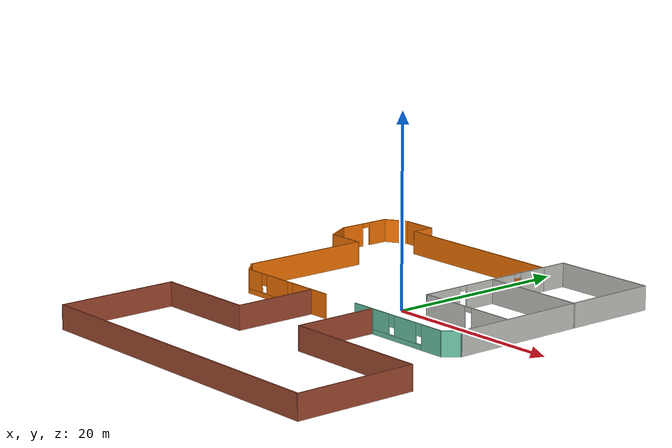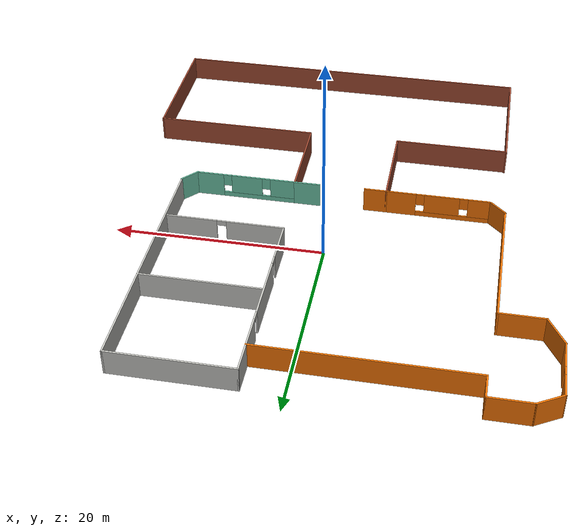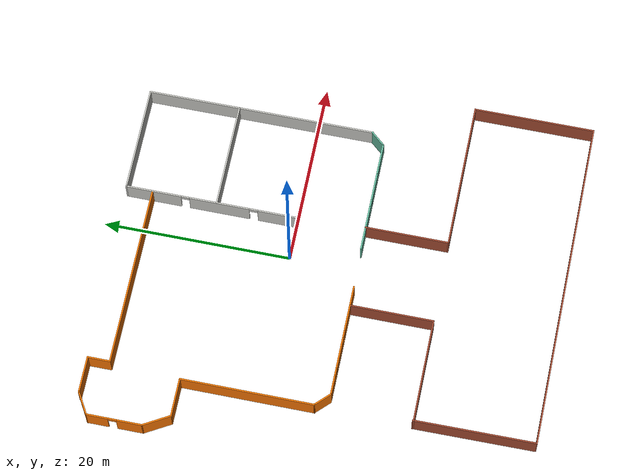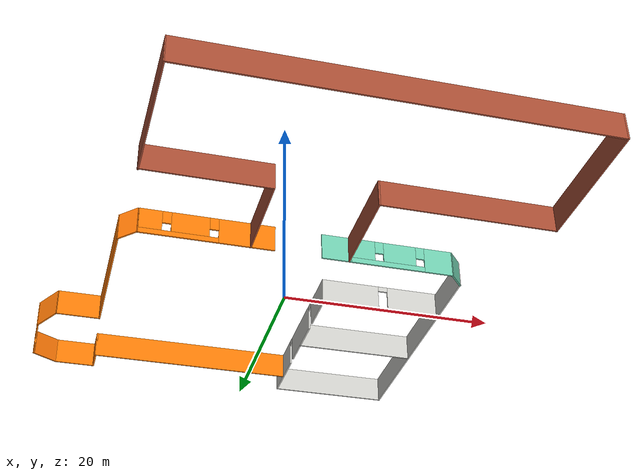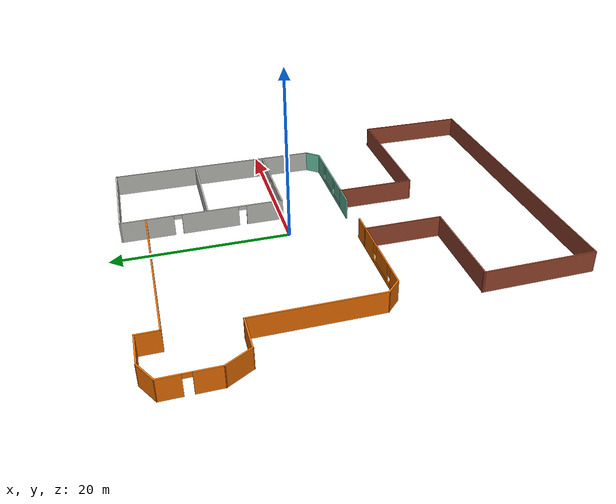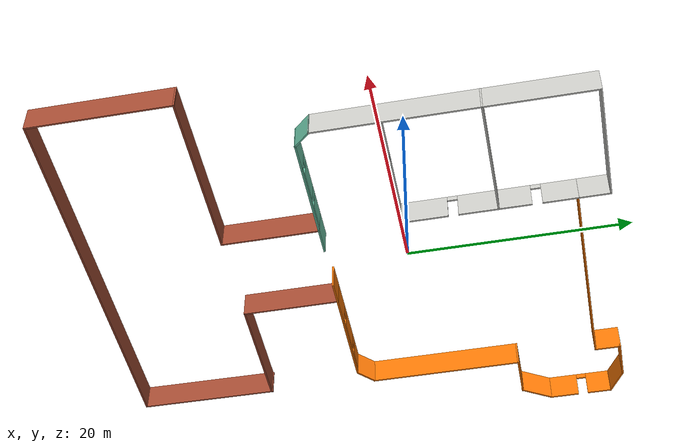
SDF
<?xml version='1.0'?>
<sdf version='1.6'>
  <model name='SnorlaxWorld'>
    <pose frame=''>-1.00548 -5.3095 0 0 -0 0</pose>
    <link name='Wall_10'>
      <collision name='Wall_10_Collision'>
        <geometry>
          <box>
            <size>2.5 0.15 2.5</size>
          </box>
        </geometry>
        <pose frame=''>0 0 1.25 0 -0 0</pose>
      </collision>
      <visual name='Wall_10_Visual'>
        <pose frame=''>0 0 1.25 0 -0 0</pose>
        <geometry>
          <box>
            <size>2.5 0.15 2.5</size>
          </box>
        </geometry>
        <material>
          <script>
            <uri>file://media/materials/scripts/gazebo.material</uri>
            <name>Gazebo/Grey</name>
          </script>
          <ambient>0.996078 0.47451 0.0196078 1</ambient>
        </material>
        <meta>
          <layer>0</layer>
        </meta>
      </visual>
      <pose frame=''>-14.8431 22.0651 0 0 -0 -1.5708</pose>
    </link>
    <link name='Wall_11'>
      <collision name='Wall_11_Collision'>
        <geometry>
          <box>
            <size>19.75 0.15 2.5</size>
          </box>
        </geometry>
        <pose frame=''>0 0 1.25 0 -0 0</pose>
      </collision>
      <visual name='Wall_11_Visual'>
        <pose frame=''>0 0 1.25 0 -0 0</pose>
        <geometry>
          <box>
            <size>19.75 0.15 2.5</size>
          </box>
        </geometry>
        <material>
          <script>
            <uri>file://media/materials/scripts/gazebo.material</uri>
            <name>Gazebo/Grey</name>
          </script>
          <ambient>0.996078 0.47451 0.0196078 1</ambient>
        </material>
        <meta>
          <layer>0</layer>
        </meta>
      </visual>
      <pose frame=''>-5.04308 20.8901 0 0 -0 0</pose>
    </link>
    <link name='Wall_12'>
      <collision name='Wall_12_Collision'>
        <geometry>
          <box>
            <size>3 0.15 2.5</size>
          </box>
        </geometry>
        <pose frame=''>0 0 1.25 0 -0 0</pose>
      </collision>
      <visual name='Wall_12_Visual'>
        <pose frame=''>0 0 1.25 0 -0 0</pose>
        <geometry>
          <box>
            <size>3 0.15 2.5</size>
          </box>
        </geometry>
        <material>
          <script>
            <uri>file://media/materials/scripts/gazebo.material</uri>
            <name>Gazebo/CeilingTiled</name>
          </script>
          <ambient>0.435294 0.796078 0.67451 1</ambient>
        </material>
        <meta>
          <layer>0</layer>
        </meta>
      </visual>
      <pose frame=''>4.75692 22.3151 0 0 -0 1.5708</pose>
    </link>
    <link name='Wall_13'>
      <collision name='Wall_13_Collision'>
        <geometry>
          <box>
            <size>11.5 0.15 2.5</size>
          </box>
        </geometry>
        <pose frame=''>0 0 1.25 0 -0 0</pose>
      </collision>
      <visual name='Wall_13_Visual'>
        <pose frame=''>0 0 1.25 0 -0 0</pose>
        <geometry>
          <box>
            <size>11.5 0.15 2.5</size>
          </box>
        </geometry>
        <material>
          <script>
            <uri>file://media/materials/scripts/gazebo.material</uri>
            <name>Gazebo/CeilingTiled</name>
          </script>
          <ambient>0.435294 0.796078 0.67451 1</ambient>
        </material>
        <meta>
          <layer>0</layer>
        </meta>
      </visual>
      <pose frame=''>10.4319 23.7401 0 0 -0 0</pose>
    </link>
    <link name='Wall_14'>
      <collision name='Wall_14_Collision'>
        <geometry>
          <box>
            <size>24.5 0.15 2.5</size>
          </box>
        </geometry>
        <pose frame=''>0 0 1.25 0 -0 0</pose>
      </collision>
      <visual name='Wall_14_Visual'>
        <pose frame=''>0 0 1.25 0 -0 0</pose>
        <geometry>
          <box>
            <size>24.5 0.15 2.5</size>
          </box>
        </geometry>
        <material>
          <script>
            <uri>file://media/materials/scripts/gazebo.material</uri>
            <name>Gazebo/CeilingTiled</name>
          </script>
          <ambient>0.435294 0.796078 0.67451 1</ambient>
        </material>
        <meta>
          <layer>0</layer>
        </meta>
      </visual>
      <pose frame=''>16.1069 11.5651 0 0 -0 -1.5708</pose>
    </link>
    <link name='Wall_16'>
      <collision name='Wall_16_Collision'>
        <geometry>
          <box>
            <size>2.01805 0.15 2.5</size>
          </box>
        </geometry>
        <pose frame=''>0 0 1.25 0 -0 0</pose>
      </collision>
      <visual name='Wall_16_Visual'>
        <pose frame=''>0 0 1.25 0 -0 0</pose>
        <geometry>
          <box>
            <size>2.01805 0.15 2.5</size>
          </box>
        </geometry>
        <material>
          <script>
            <uri>file://media/materials/scripts/gazebo.material</uri>
            <name>Gazebo/Grey</name>
          </script>
          <ambient>0.435294 0.796078 0.67451 1</ambient>
        </material>
        <meta>
          <layer>0</layer>
        </meta>
      </visual>
      <pose frame=''>15.4903 -1.31151 0 0 -0 0.849815</pose>
    </link>
    <link name='Wall_18'>
      <pose frame=''>4.75692 13.0901 0 0 -0 -1.5708</pose>
      <visual name='Wall_18_Visual_0'>
        <pose frame=''>-6.2935 0 1.25 0 -0 0</pose>
        <geometry>
          <box>
            <size>3.163 0.15 2.5</size>
          </box>
        </geometry>
        <material>
          <script>
            <uri>file://media/materials/scripts/gazebo.material</uri>
            <name>Gazebo/CeilingTiled</name>
          </script>
          <ambient>0.435294 0.796078 0.67451 1</ambient>
        </material>
        <meta>
          <layer>0</layer>
        </meta>
      </visual>
      <collision name='Wall_18_Collision_0'>
        <geometry>
          <box>
            <size>3.163 0.15 2.5</size>
          </box>
        </geometry>
        <pose frame=''>-6.2935 0 1.25 0 -0 0</pose>
      </collision>
      <visual name='Wall_18_Visual_1'>
        <pose frame=''>-0.569012 0 1.25 0 -0 0</pose>
        <geometry>
          <box>
            <size>6.48598 0.15 2.5</size>
          </box>
        </geometry>
        <material>
          <script>
            <uri>file://media/materials/scripts/gazebo.material</uri>
            <name>Gazebo/CeilingTiled</name>
          </script>
          <ambient>0.435294 0.796078 0.67451 1</ambient>
        </material>
        <meta>
          <layer>0</layer>
        </meta>
      </visual>
      <collision name='Wall_18_Collision_1'>
        <geometry>
          <box>
            <size>6.48598 0.15 2.5</size>
          </box>
        </geometry>
        <pose frame=''>-0.569012 0 1.25 0 -0 0</pose>
      </collision>
      <visual name='Wall_18_Visual_2'>
        <pose frame=''>5.72449 0 1.25 0 -0 0</pose>
        <geometry>
          <box>
            <size>4.30102 0.15 2.5</size>
          </box>
        </geometry>
        <material>
          <script>
            <uri>file://media/materials/scripts/gazebo.material</uri>
            <name>Gazebo/CeilingTiled</name>
          </script>
          <ambient>0.435294 0.796078 0.67451 1</ambient>
        </material>
        <meta>
          <layer>0</layer>
        </meta>
      </visual>
      <collision name='Wall_18_Collision_2'>
        <geometry>
          <box>
            <size>4.30102 0.15 2.5</size>
          </box>
        </geometry>
        <pose frame=''>5.72449 0 1.25 0 -0 0</pose>
      </collision>
      <visual name='Wall_18_Visual_3'>
        <pose frame=''>-4.262 0 2.25 0 -0 0</pose>
        <geometry>
          <box>
            <size>0.9 0.15 0.5</size>
          </box>
        </geometry>
        <material>
          <script>
            <uri>file://media/materials/scripts/gazebo.material</uri>
            <name>Gazebo/CeilingTiled</name>
          </script>
          <ambient>0.435294 0.796078 0.67451 1</ambient>
        </material>
        <meta>
          <layer>0</layer>
        </meta>
      </visual>
      <collision name='Wall_18_Collision_3'>
        <geometry>
          <box>
            <size>0.9 0.15 0.5</size>
          </box>
        </geometry>
        <pose frame=''>-4.262 0 2.25 0 -0 0</pose>
      </collision>
      <visual name='Wall_18_Visual_4'>
        <pose frame=''>3.12398 0 2.25 0 -0 0</pose>
        <geometry>
          <box>
            <size>0.9 0.15 0.5</size>
          </box>
        </geometry>
        <material>
          <script>
            <uri>file://media/materials/scripts/gazebo.material</uri>
            <name>Gazebo/CeilingTiled</name>
          </script>
          <ambient>0.435294 0.796078 0.67451 1</ambient>
        </material>
        <meta>
          <layer>0</layer>
        </meta>
      </visual>
      <collision name='Wall_18_Collision_4'>
        <geometry>
          <box>
            <size>0.9 0.15 0.5</size>
          </box>
        </geometry>
        <pose frame=''>3.12398 0 2.25 0 -0 0</pose>
      </collision>
    </link>
    <link name='Wall_19'>
      <pose frame=''>10.3069 5.29009 0 0 -0 0</pose>
      <visual name='Wall_19_Visual_0'>
        <pose frame=''>-2.86313 0 1.25 0 -0 0</pose>
        <geometry>
          <box>
            <size>5.52374 0.15 2.5</size>
          </box>
        </geometry>
        <material>
          <script>
            <uri>file://media/materials/scripts/gazebo.material</uri>
            <name>Gazebo/CeilingTiled</name>
          </script>
          <ambient>0.435294 0.796078 0.67451 1</ambient>
        </material>
        <meta>
          <layer>0</layer>
        </meta>
      </visual>
      <collision name='Wall_19_Collision_0'>
        <geometry>
          <box>
            <size>5.52374 0.15 2.5</size>
          </box>
        </geometry>
        <pose frame=''>-2.86313 0 1.25 0 -0 0</pose>
      </collision>
      <visual name='Wall_19_Visual_1'>
        <pose frame=''>3.21187 0 1.25 0 -0 0</pose>
        <geometry>
          <box>
            <size>4.82626 0.15 2.5</size>
          </box>
        </geometry>
        <material>
          <script>
            <uri>file://media/materials/scripts/gazebo.material</uri>
            <name>Gazebo/CeilingTiled</name>
          </script>
          <ambient>0.435294 0.796078 0.67451 1</ambient>
        </material>
        <meta>
          <layer>0</layer>
        </meta>
      </visual>
      <collision name='Wall_19_Collision_1'>
        <geometry>
          <box>
            <size>4.82626 0.15 2.5</size>
          </box>
        </geometry>
        <pose frame=''>3.21187 0 1.25 0 -0 0</pose>
      </collision>
      <visual name='Wall_19_Visual_2'>
        <pose frame=''>0.348738 0 2.25 0 -0 0</pose>
        <geometry>
          <box>
            <size>0.9 0.15 0.5</size>
          </box>
        </geometry>
        <material>
          <script>
            <uri>file://media/materials/scripts/gazebo.material</uri>
            <name>Gazebo/CeilingTiled</name>
          </script>
          <ambient>0.435294 0.796078 0.67451 1</ambient>
        </material>
        <meta>
          <layer>0</layer>
        </meta>
      </visual>
      <collision name='Wall_19_Collision_2'>
        <geometry>
          <box>
            <size>0.9 0.15 0.5</size>
          </box>
        </geometry>
        <pose frame=''>0.348738 0 2.25 0 -0 0</pose>
      </collision>
    </link>
    <link name='Wall_21'>
      <collision name='Wall_21_Collision'>
        <geometry>
          <box>
            <size>11.5 0.15 2.5</size>
          </box>
        </geometry>
        <pose frame=''>0 0 1.25 0 -0 0</pose>
      </collision>
      <visual name='Wall_21_Visual'>
        <pose frame=''>0 0 1.25 0 -0 0</pose>
        <geometry>
          <box>
            <size>11.5 0.15 2.5</size>
          </box>
        </geometry>
        <material>
          <script>
            <uri>file://media/materials/scripts/gazebo.material</uri>
            <name>Gazebo/CeilingTiled</name>
          </script>
          <ambient>0.435294 0.796078 0.67451 1</ambient>
        </material>
        <meta>
          <layer>0</layer>
        </meta>
      </visual>
      <pose frame=''>10.4408 13.9528 0 0 -0 0</pose>
    </link>
    <link name='Wall_25'>
      <collision name='Wall_25_Collision'>
        <geometry>
          <box>
            <size>11.25 0.15 2.5</size>
          </box>
        </geometry>
        <pose frame=''>0 0 1.25 0 -0 0</pose>
      </collision>
      <visual name='Wall_25_Visual'>
        <pose frame=''>0 0 1.25 0 -0 0</pose>
        <geometry>
          <box>
            <size>11.25 0.15 2.5</size>
          </box>
        </geometry>
        <material>
          <script>
            <uri>file://media/materials/scripts/gazebo.material</uri>
            <name>Gazebo/Bricks</name>
          </script>
          <ambient>1 1 1 1</ambient>
        </material>
        <meta>
          <layer>0</layer>
        </meta>
      </visual>
      <pose frame=''>-9.40917 -10.9887 0 0 -0 3.14159</pose>
    </link>
    <link name='Wall_26'>
      <collision name='Wall_26_Collision'>
        <geometry>
          <box>
            <size>12.9826 0.15 2.5</size>
          </box>
        </geometry>
        <pose frame=''>0 0 1.25 0 -0 0</pose>
      </collision>
      <visual name='Wall_26_Visual'>
        <pose frame=''>0 0 1.25 0 -0 0</pose>
        <geometry>
          <box>
            <size>12.9826 0.15 2.5</size>
          </box>
        </geometry>
        <material>
          <script>
            <uri>file://media/materials/scripts/gazebo.material</uri>
            <name>Gazebo/Bricks</name>
          </script>
          <ambient>1 1 1 1</ambient>
        </material>
        <meta>
          <layer>0</layer>
        </meta>
      </visual>
      <pose frame=''>-14.9185 -17.3235 0 0 -0 -1.56445</pose>
    </link>
    <link name='Wall_27'>
      <collision name='Wall_27_Collision'>
        <geometry>
          <box>
            <size>36 0.15 2.5</size>
          </box>
        </geometry>
        <pose frame=''>0 0 1.25 0 -0 0</pose>
      </collision>
      <visual name='Wall_27_Visual'>
        <pose frame=''>0 0 1.25 0 -0 0</pose>
        <geometry>
          <box>
            <size>36 0.15 2.5</size>
          </box>
        </geometry>
        <material>
          <script>
            <uri>file://media/materials/scripts/gazebo.material</uri>
            <name>Gazebo/Bricks</name>
          </script>
          <ambient>1 1 1 1</ambient>
        </material>
        <meta>
          <layer>0</layer>
        </meta>
      </visual>
      <pose frame=''>3.0472 -23.7396 0 0 -0 0</pose>
    </link>
    <link name='Wall_28'>
      <collision name='Wall_28_Collision'>
        <geometry>
          <box>
            <size>13 0.15 2.5</size>
          </box>
        </geometry>
        <pose frame=''>0 0 1.25 0 -0 0</pose>
      </collision>
      <visual name='Wall_28_Visual'>
        <pose frame=''>0 0 1.25 0 -0 0</pose>
        <geometry>
          <box>
            <size>13 0.15 2.5</size>
          </box>
        </geometry>
        <material>
          <script>
            <uri>file://media/materials/scripts/gazebo.material</uri>
            <name>Gazebo/Bricks</name>
          </script>
          <ambient>1 1 1 1</ambient>
        </material>
        <meta>
          <layer>0</layer>
        </meta>
      </visual>
      <pose frame=''>20.9722 -17.3146 0 0 -0 1.5708</pose>
    </link>
    <link name='Wall_29'>
      <collision name='Wall_29_Collision'>
        <geometry>
          <box>
            <size>16 0.15 2.5</size>
          </box>
        </geometry>
        <pose frame=''>0 0 1.25 0 -0 0</pose>
      </collision>
      <visual name='Wall_29_Visual'>
        <pose frame=''>0 0 1.25 0 -0 0</pose>
        <geometry>
          <box>
            <size>16 0.15 2.5</size>
          </box>
        </geometry>
        <material>
          <script>
            <uri>file://media/materials/scripts/gazebo.material</uri>
            <name>Gazebo/Bricks</name>
          </script>
          <ambient>1 1 1 1</ambient>
        </material>
        <meta>
          <layer>0</layer>
        </meta>
      </visual>
      <pose frame=''>13.0472 -10.8896 0 0 -0 3.14159</pose>
    </link>
    <link name='Wall_3'>
      <collision name='Wall_3_Collision'>
        <geometry>
          <box>
            <size>2.14701 0.15 2.5</size>
          </box>
        </geometry>
        <pose frame=''>0 0 1.25 0 -0 0</pose>
      </collision>
      <visual name='Wall_3_Visual'>
        <pose frame=''>0 0 1.25 0 -0 0</pose>
        <geometry>
          <box>
            <size>2.14701 0.15 2.5</size>
          </box>
        </geometry>
        <material>
          <script>
            <uri>file://media/materials/scripts/gazebo.material</uri>
            <name>Gazebo/Grey</name>
          </script>
          <ambient>0.996078 0.47451 0.0196078 1</ambient>
        </material>
        <meta>
          <layer>0</layer>
        </meta>
      </visual>
      <pose frame=''>-14.5887 -1.40063 0 0 -0 2.35619</pose>
    </link>
    <link name='Wall_31'>
      <collision name='Wall_31_Collision'>
        <geometry>
          <box>
            <size>9 0.15 2.5</size>
          </box>
        </geometry>
        <pose frame=''>0 0 1.25 0 -0 0</pose>
      </collision>
      <visual name='Wall_31_Visual'>
        <pose frame=''>0 0 1.25 0 -0 0</pose>
        <geometry>
          <box>
            <size>9 0.15 2.5</size>
          </box>
        </geometry>
        <material>
          <script>
            <uri>file://media/materials/scripts/gazebo.material</uri>
            <name>Gazebo/Bricks</name>
          </script>
          <ambient>1 1 1 1</ambient>
        </material>
        <meta>
          <layer>0</layer>
        </meta>
      </visual>
      <pose frame=''>5.1222 -6.46462 0 0 -0 1.5708</pose>
    </link>
    <link name='Wall_33'>
      <collision name='Wall_33_Collision'>
        <geometry>
          <box>
            <size>9 0.15 2.5</size>
          </box>
        </geometry>
        <pose frame=''>0 0 1.25 0 -0 0</pose>
      </collision>
      <visual name='Wall_33_Visual'>
        <pose frame=''>0 0 1.25 0 -0 0</pose>
        <geometry>
          <box>
            <size>9 0.15 2.5</size>
          </box>
        </geometry>
        <material>
          <script>
            <uri>file://media/materials/scripts/gazebo.material</uri>
            <name>Gazebo/Bricks</name>
          </script>
          <ambient>1 1 1 1</ambient>
        </material>
        <meta>
          <layer>0</layer>
        </meta>
      </visual>
      <pose frame=''>-3.85917 -6.56366 0 0 -0 1.5708</pose>
    </link>
    <link name='Wall_35'>
      <pose frame=''>10.0738 -2.01311 0 0 -0 3.14159</pose>
      <visual name='Wall_35_Visual_0'>
        <pose frame=''>-3.51255 0 1.25 0 -0 0</pose>
        <geometry>
          <box>
            <size>2.72489 0.15 2.5</size>
          </box>
        </geometry>
        <material>
          <script>
            <uri>file://media/materials/scripts/gazebo.material</uri>
            <name>Gazebo/Grey</name>
          </script>
          <ambient>0.435294 0.796078 0.67451 1</ambient>
        </material>
        <meta>
          <layer>0</layer>
        </meta>
      </visual>
      <collision name='Wall_35_Collision_0'>
        <geometry>
          <box>
            <size>2.72489 0.15 2.5</size>
          </box>
        </geometry>
        <pose frame=''>-3.51255 0 1.25 0 -0 0</pose>
      </collision>
      <visual name='Wall_35_Visual_1'>
        <pose frame=''>1.36245 0 0.25 0 -0 0</pose>
        <geometry>
          <box>
            <size>7.02511 0.15 0.5</size>
          </box>
        </geometry>
        <material>
          <script>
            <uri>file://media/materials/scripts/gazebo.material</uri>
            <name>Gazebo/Grey</name>
          </script>
          <ambient>0.435294 0.796078 0.67451 1</ambient>
        </material>
        <meta>
          <layer>0</layer>
        </meta>
      </visual>
      <collision name='Wall_35_Collision_1'>
        <geometry>
          <box>
            <size>7.02511 0.15 0.5</size>
          </box>
        </geometry>
        <pose frame=''>1.36245 0 0.25 0 -0 0</pose>
      </collision>
      <visual name='Wall_35_Visual_2'>
        <pose frame=''>0.1813 0 1.5 0 -0 0</pose>
        <geometry>
          <box>
            <size>3.06281 0.15 2</size>
          </box>
        </geometry>
        <material>
          <script>
            <uri>file://media/materials/scripts/gazebo.material</uri>
            <name>Gazebo/Grey</name>
          </script>
          <ambient>0.435294 0.796078 0.67451 1</ambient>
        </material>
        <meta>
          <layer>0</layer>
        </meta>
      </visual>
      <collision name='Wall_35_Collision_2'>
        <geometry>
          <box>
            <size>3.06281 0.15 2</size>
          </box>
        </geometry>
        <pose frame=''>0.1813 0 1.5 0 -0 0</pose>
      </collision>
      <visual name='Wall_35_Visual_3'>
        <pose frame=''>3.69385 0 1.5 0 -0 0</pose>
        <geometry>
          <box>
            <size>2.36229 0.15 2</size>
          </box>
        </geometry>
        <material>
          <script>
            <uri>file://media/materials/scripts/gazebo.material</uri>
            <name>Gazebo/Grey</name>
          </script>
          <ambient>0.435294 0.796078 0.67451 1</ambient>
        </material>
        <meta>
          <layer>0</layer>
        </meta>
      </visual>
      <collision name='Wall_35_Collision_3'>
        <geometry>
          <box>
            <size>2.36229 0.15 2</size>
          </box>
        </geometry>
        <pose frame=''>3.69385 0 1.5 0 -0 0</pose>
      </collision>
      <visual name='Wall_35_Visual_4'>
        <pose frame=''>-1.75011 0 1.9 0 -0 0</pose>
        <geometry>
          <box>
            <size>0.8 0.15 1.2</size>
          </box>
        </geometry>
        <material>
          <script>
            <uri>file://media/materials/scripts/gazebo.material</uri>
            <name>Gazebo/Grey</name>
          </script>
          <ambient>0.435294 0.796078 0.67451 1</ambient>
        </material>
        <meta>
          <layer>0</layer>
        </meta>
      </visual>
      <collision name='Wall_35_Collision_4'>
        <geometry>
          <box>
            <size>0.8 0.15 1.2</size>
          </box>
        </geometry>
        <pose frame=''>-1.75011 0 1.9 0 -0 0</pose>
      </collision>
      <visual name='Wall_35_Visual_5'>
        <pose frame=''>2.11271 0 1.9 0 -0 0</pose>
        <geometry>
          <box>
            <size>0.8 0.15 1.2</size>
          </box>
        </geometry>
        <material>
          <script>
            <uri>file://media/materials/scripts/gazebo.material</uri>
            <name>Gazebo/Grey</name>
          </script>
          <ambient>0.435294 0.796078 0.67451 1</ambient>
        </material>
        <meta>
          <layer>0</layer>
        </meta>
      </visual>
      <collision name='Wall_35_Collision_5'>
        <geometry>
          <box>
            <size>0.8 0.15 1.2</size>
          </box>
        </geometry>
        <pose frame=''>2.11271 0 1.9 0 -0 0</pose>
      </collision>
    </link>
    <link name='Wall_37'>
      <pose frame=''>-8.78417 -2.13866 0 0 -0 3.14159</pose>
      <visual name='Wall_37_Visual_0'>
        <pose frame=''>-3.52048 0 1.25 0 -0 0</pose>
        <geometry>
          <box>
            <size>2.95904 0.15 2.5</size>
          </box>
        </geometry>
        <material>
          <script>
            <uri>file://media/materials/scripts/gazebo.material</uri>
            <name>Gazebo/Grey</name>
          </script>
          <ambient>0.996078 0.47451 0.0196078 1</ambient>
        </material>
        <meta>
          <layer>0</layer>
        </meta>
      </visual>
      <collision name='Wall_37_Collision_0'>
        <geometry>
          <box>
            <size>2.95904 0.15 2.5</size>
          </box>
        </geometry>
        <pose frame=''>-3.52048 0 1.25 0 -0 0</pose>
      </collision>
      <visual name='Wall_37_Visual_1'>
        <pose frame=''>1.47952 0 0.25 0 -0 0</pose>
        <geometry>
          <box>
            <size>7.04096 0.15 0.5</size>
          </box>
        </geometry>
        <material>
          <script>
            <uri>file://media/materials/scripts/gazebo.material</uri>
            <name>Gazebo/Grey</name>
          </script>
          <ambient>0.996078 0.47451 0.0196078 1</ambient>
        </material>
        <meta>
          <layer>0</layer>
        </meta>
      </visual>
      <collision name='Wall_37_Collision_1'>
        <geometry>
          <box>
            <size>7.04096 0.15 0.5</size>
          </box>
        </geometry>
        <pose frame=''>1.47952 0 0.25 0 -0 0</pose>
      </collision>
      <visual name='Wall_37_Visual_2'>
        <pose frame=''>0.452363 0 1.5 0 -0 0</pose>
        <geometry>
          <box>
            <size>3.38664 0.15 2</size>
          </box>
        </geometry>
        <material>
          <script>
            <uri>file://media/materials/scripts/gazebo.material</uri>
            <name>Gazebo/Grey</name>
          </script>
          <ambient>0.996078 0.47451 0.0196078 1</ambient>
        </material>
        <meta>
          <layer>0</layer>
        </meta>
      </visual>
      <collision name='Wall_37_Collision_2'>
        <geometry>
          <box>
            <size>3.38664 0.15 2</size>
          </box>
        </geometry>
        <pose frame=''>0.452363 0 1.5 0 -0 0</pose>
      </collision>
      <visual name='Wall_37_Visual_3'>
        <pose frame=''>3.97284 0 1.5 0 -0 0</pose>
        <geometry>
          <box>
            <size>2.05432 0.15 2</size>
          </box>
        </geometry>
        <material>
          <script>
            <uri>file://media/materials/scripts/gazebo.material</uri>
            <name>Gazebo/Grey</name>
          </script>
          <ambient>0.996078 0.47451 0.0196078 1</ambient>
        </material>
        <meta>
          <layer>0</layer>
        </meta>
      </visual>
      <collision name='Wall_37_Collision_3'>
        <geometry>
          <box>
            <size>2.05432 0.15 2</size>
          </box>
        </geometry>
        <pose frame=''>3.97284 0 1.5 0 -0 0</pose>
      </collision>
      <visual name='Wall_37_Visual_4'>
        <pose frame=''>-1.64096 0 1.9 0 -0 0</pose>
        <geometry>
          <box>
            <size>0.8 0.15 1.2</size>
          </box>
        </geometry>
        <material>
          <script>
            <uri>file://media/materials/scripts/gazebo.material</uri>
            <name>Gazebo/Grey</name>
          </script>
          <ambient>0.996078 0.47451 0.0196078 1</ambient>
        </material>
        <meta>
          <layer>0</layer>
        </meta>
      </visual>
      <collision name='Wall_37_Collision_4'>
        <geometry>
          <box>
            <size>0.8 0.15 1.2</size>
          </box>
        </geometry>
        <pose frame=''>-1.64096 0 1.9 0 -0 0</pose>
      </collision>
      <visual name='Wall_37_Visual_5'>
        <pose frame=''>2.54568 0 1.9 0 -0 0</pose>
        <geometry>
          <box>
            <size>0.8 0.15 1.2</size>
          </box>
        </geometry>
        <material>
          <script>
            <uri>file://media/materials/scripts/gazebo.material</uri>
            <name>Gazebo/Grey</name>
          </script>
          <ambient>0.996078 0.47451 0.0196078 1</ambient>
        </material>
        <meta>
          <layer>0</layer>
        </meta>
      </visual>
      <collision name='Wall_37_Collision_5'>
        <geometry>
          <box>
            <size>0.8 0.15 1.2</size>
          </box>
        </geometry>
        <pose frame=''>2.54568 0 1.9 0 -0 0</pose>
      </collision>
    </link>
    <link name='Wall_39'>
      <collision name='Wall_39_Collision'>
        <geometry>
          <box>
            <size>2.75 0.15 2.5</size>
          </box>
        </geometry>
        <pose frame=''>0 0 1.25 0 -0 0</pose>
      </collision>
      <visual name='Wall_39_Visual'>
        <pose frame=''>0 0 1.25 0 -0 0</pose>
        <geometry>
          <box>
            <size>2.75 0.15 2.5</size>
          </box>
        </geometry>
        <material>
          <script>
            <uri>file://media/materials/scripts/gazebo.material</uri>
            <name>Gazebo/Grey</name>
          </script>
          <ambient>0.435294 0.796078 0.67451 1</ambient>
        </material>
        <meta>
          <layer>0</layer>
        </meta>
      </visual>
      <pose frame=''>3.97378 -2.01311 0 0 -0 3.14159</pose>
    </link>
    <link name='Wall_4'>
      <collision name='Wall_4_Collision'>
        <geometry>
          <box>
            <size>14.25 0.15 2.5</size>
          </box>
        </geometry>
        <pose frame=''>0 0 1.25 0 -0 0</pose>
      </collision>
      <visual name='Wall_4_Visual'>
        <pose frame=''>0 0 1.25 0 -0 0</pose>
        <geometry>
          <box>
            <size>14.25 0.15 2.5</size>
          </box>
        </geometry>
        <material>
          <script>
            <uri>file://media/materials/scripts/gazebo.material</uri>
            <name>Gazebo/Grey</name>
          </script>
          <ambient>0.996078 0.47451 0.0196078 1</ambient>
        </material>
        <meta>
          <layer>0</layer>
        </meta>
      </visual>
      <pose frame=''>-15.2947 6.35542 0 0 -0 1.5708</pose>
    </link>
    <link name='Wall_41'>
      <collision name='Wall_41_Collision'>
        <geometry>
          <box>
            <size>2.25 0.15 2.5</size>
          </box>
        </geometry>
        <pose frame=''>0 0 1.25 0 -0 0</pose>
      </collision>
      <visual name='Wall_41_Visual'>
        <pose frame=''>0 0 1.25 0 -0 0</pose>
        <geometry>
          <box>
            <size>2.25 0.15 2.5</size>
          </box>
        </geometry>
        <material>
          <script>
            <uri>file://media/materials/scripts/gazebo.material</uri>
            <name>Gazebo/Grey</name>
          </script>
          <ambient>0.996078 0.47451 0.0196078 1</ambient>
        </material>
        <meta>
          <layer>0</layer>
        </meta>
      </visual>
      <pose frame=''>-2.80917 -2.13866 0 0 -0 0</pose>
    </link>
    <link name='Wall_5'>
      <collision name='Wall_5_Collision'>
        <geometry>
          <box>
            <size>4.25 0.15 2.5</size>
          </box>
        </geometry>
        <pose frame=''>0 0 1.25 0 -0 0</pose>
      </collision>
      <visual name='Wall_5_Visual'>
        <pose frame=''>0 0 1.25 0 -0 0</pose>
        <geometry>
          <box>
            <size>4.25 0.15 2.5</size>
          </box>
        </geometry>
        <material>
          <script>
            <uri>file://media/materials/scripts/gazebo.material</uri>
            <name>Gazebo/Grey</name>
          </script>
          <ambient>0.996078 0.47451 0.0196078 1</ambient>
        </material>
        <meta>
          <layer>0</layer>
        </meta>
      </visual>
      <pose frame=''>-17.3447 13.4054 0 0 -0 3.14159</pose>
    </link>
    <link name='Wall_6'>
      <collision name='Wall_6_Collision'>
        <geometry>
          <box>
            <size>3.25 0.15 2.5</size>
          </box>
        </geometry>
        <pose frame=''>0 0 1.25 0 -0 0</pose>
      </collision>
      <visual name='Wall_6_Visual'>
        <pose frame=''>0 0 1.25 0 -0 0</pose>
        <geometry>
          <box>
            <size>3.25 0.15 2.5</size>
          </box>
        </geometry>
        <material>
          <script>
            <uri>file://media/materials/scripts/gazebo.material</uri>
            <name>Gazebo/Grey</name>
          </script>
          <ambient>0.996078 0.47451 0.0196078 1</ambient>
        </material>
        <meta>
          <layer>0</layer>
        </meta>
      </visual>
      <pose frame=''>-20.1697 14.7478 0 0 -0 2.0944</pose>
    </link>
    <link name='Wall_7'>
      <pose frame=''>-20.9447 19.0151 0 0 -0 1.5708</pose>
      <visual name='Wall_7_Visual_0'>
        <pose frame=''>-1.61955 0 1.25 0 -0 0</pose>
        <geometry>
          <box>
            <size>2.76089 0.15 2.5</size>
          </box>
        </geometry>
        <material>
          <script>
            <uri>file://media/materials/scripts/gazebo.material</uri>
            <name>Gazebo/Grey</name>
          </script>
          <ambient>0.996078 0.47451 0.0196078 1</ambient>
        </material>
        <meta>
          <layer>0</layer>
        </meta>
      </visual>
      <collision name='Wall_7_Collision_0'>
        <geometry>
          <box>
            <size>2.76089 0.15 2.5</size>
          </box>
        </geometry>
        <pose frame=''>-1.61955 0 1.25 0 -0 0</pose>
      </collision>
      <visual name='Wall_7_Visual_1'>
        <pose frame=''>1.83045 0 1.25 0 -0 0</pose>
        <geometry>
          <box>
            <size>2.33911 0.15 2.5</size>
          </box>
        </geometry>
        <material>
          <script>
            <uri>file://media/materials/scripts/gazebo.material</uri>
            <name>Gazebo/Grey</name>
          </script>
          <ambient>0.996078 0.47451 0.0196078 1</ambient>
        </material>
        <meta>
          <layer>0</layer>
        </meta>
      </visual>
      <collision name='Wall_7_Collision_1'>
        <geometry>
          <box>
            <size>2.33911 0.15 2.5</size>
          </box>
        </geometry>
        <pose frame=''>1.83045 0 1.25 0 -0 0</pose>
      </collision>
      <visual name='Wall_7_Visual_2'>
        <pose frame=''>0.210894 0 2.25 0 -0 0</pose>
        <geometry>
          <box>
            <size>0.9 0.15 0.5</size>
          </box>
        </geometry>
        <material>
          <script>
            <uri>file://media/materials/scripts/gazebo.material</uri>
            <name>Gazebo/Grey</name>
          </script>
          <ambient>0.996078 0.47451 0.0196078 1</ambient>
        </material>
        <meta>
          <layer>0</layer>
        </meta>
      </visual>
      <collision name='Wall_7_Collision_2'>
        <geometry>
          <box>
            <size>0.9 0.15 0.5</size>
          </box>
        </geometry>
        <pose frame=''>0.210894 0 2.25 0 -0 0</pose>
      </collision>
    </link>
    <link name='Wall_8'>
      <collision name='Wall_8_Collision'>
        <geometry>
          <box>
            <size>2.75 0.15 2.5</size>
          </box>
        </geometry>
        <pose frame=''>0 0 1.25 0 -0 0</pose>
      </collision>
      <visual name='Wall_8_Visual'>
        <pose frame=''>0 0 1.25 0 -0 0</pose>
        <geometry>
          <box>
            <size>2.75 0.15 2.5</size>
          </box>
        </geometry>
        <material>
          <script>
            <uri>file://media/materials/scripts/gazebo.material</uri>
            <name>Gazebo/Grey</name>
          </script>
          <ambient>0.996078 0.47451 0.0196078 1</ambient>
        </material>
        <meta>
          <layer>0</layer>
        </meta>
      </visual>
      <pose frame=''>-19.8189 22.5901 0 0 -0 0.523599</pose>
    </link>
    <link name='Wall_9'>
      <collision name='Wall_9_Collision'>
        <geometry>
          <box>
            <size>4 0.15 2.5</size>
          </box>
        </geometry>
        <pose frame=''>0 0 1.25 0 -0 0</pose>
      </collision>
      <visual name='Wall_9_Visual'>
        <pose frame=''>0 0 1.25 0 -0 0</pose>
        <geometry>
          <box>
            <size>4 0.15 2.5</size>
          </box>
        </geometry>
        <material>
          <script>
            <uri>file://media/materials/scripts/gazebo.material</uri>
            <name>Gazebo/Grey</name>
          </script>
          <ambient>0.996078 0.47451 0.0196078 1</ambient>
        </material>
        <meta>
          <layer>0</layer>
        </meta>
      </visual>
      <pose frame=''>-16.7681 23.2401 0 0 -0 0</pose>
    </link>
    <static>1</static>
  </model>
</sdf>
